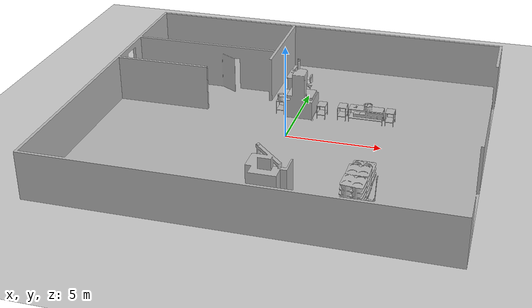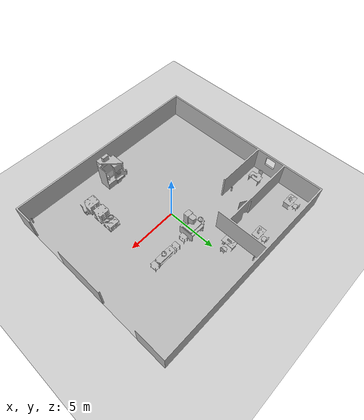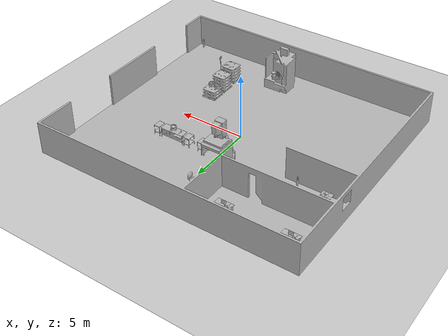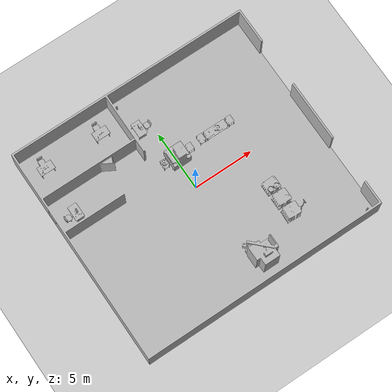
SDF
<sdf version="1.6">
 <world name="default">
  <light name="sun" type="directional">
   <pose>0 0 10 0 -0 0</pose>
   <diffuse>0.8 0.8 0.8 1</diffuse>
   <specular>0.2 0.2 0.2 1</specular>
   <attenuation>
    <range>1000</range>
    <constant>0.9</constant>
    <linear>0.01</linear>
    <quadratic>0.001</quadratic>
   </attenuation>
   <direction>-0.5 0.1 -0.9</direction>
  </light>
  <model name="ground_plane">
   <static>1</static>
   <link name="link">
    <collision name="collision">
     <geometry><plane><normal>0 0 1</normal><size>100 100</size></plane></geometry>
     <surface><friction><ode><mu>100</mu><mu2>50</mu2></ode></friction></surface>
    </collision>
    <visual name="visual">
     <cast_shadows>0</cast_shadows>
     <geometry><plane><normal>0 0 1</normal><size>100 100</size></plane></geometry>
     <material>
      <script><uri>file://media/materials/scripts/gazebo.material</uri><name>Gazebo/Grey</name></script>
     </material>
    </visual>
   </link>
  </model>
  <gravity>0 0 -9.8</gravity>
  <magnetic_field>6e-06 2.3e-05 -4.2e-05</magnetic_field>
  <atmosphere type="adiabatic"/>
  <physics name="default_physics" default="0" type="ode">
   <max_step_size>0.001</max_step_size>
   <real_time_factor>1</real_time_factor>
   <real_time_update_rate>1000</real_time_update_rate>
  </physics>
  <scene><ambient>0.4 0.4 0.4 1</ambient><background>0.7 0.7 0.7 1</background><shadows>1</shadows></scene>
  <spherical_coordinates>
   <surface_model>EARTH_WGS84</surface_model>
   <latitude_deg>0</latitude_deg>
   <longitude_deg>0</longitude_deg>
   <elevation>0</elevation>
   <heading_deg>0</heading_deg>
  </spherical_coordinates>
  <model name="floor_sketch">
   <static>1</static>
   <link name="link">
    <visual name="visual">
     <geometry><mesh><uri>model://floor_sketch/meshes/floor_sketch.obj</uri></mesh></geometry>
    </visual>
    <collision name="collision">
     <geometry><mesh><uri>model://floor_sketch/meshes/floor_sketch.obj</uri></mesh></geometry>
    </collision>
   </link>
  </model>
  <model name="2D Vision Measurement Machine">
   <static>1</static>
   <link name="link">
    <visual name="visual">
     <geometry>
      <mesh><uri>model://2D Vision Measurement Machine/meshes/2D_Vision_Measurement_Machine.obj</uri></mesh>
     </geometry>
    </visual>
    <collision name="collision">
     <geometry>
      <mesh><uri>model://2D Vision Measurement Machine/meshes/2D_Vision_Measurement_Machine.obj</uri></mesh>
     </geometry>
    </collision>
   </link>
   <pose>0.167538 2.64822 0.15 0 0 -1.5708</pose>
  </model>
  <model name="Adjustable Height Work Table">
   <static>1</static>
   <link name="link">
    <visual name="visual">
     <geometry>
      <mesh><uri>model://Adjustable Height Work Table/meshes/Adjustable_Height_Work_Table.obj</uri></mesh>
     </geometry>
    </visual>
    <collision name="collision">
     <geometry>
      <mesh><uri>model://Adjustable Height Work Table/meshes/Adjustable_Height_Work_Table.obj</uri></mesh>
     </geometry>
    </collision>
   </link>
   <pose>1.3 2.7 0.762 0 -0 0</pose>
  </model>
  <model name="adjustable_height_table_w_wheel">
   <static>1</static>
   <link name="link">
    <visual name="visual">
     <geometry>
      <mesh><uri>model://adjustable_height_table_w_wheel/meshes/adjustable_height_table_w_wheel.obj</uri></mesh>
     </geometry>
    </visual>
    <collision name="collision">
     <geometry>
      <mesh><uri>model://adjustable_height_table_w_wheel/meshes/adjustable_height_table_w_wheel.obj</uri></mesh>
     </geometry>
    </collision>
   </link>
   <pose>-1.17885 3.00036 0 0 -0 0</pose>
  </model>
  <model name="polishing_table">
   <static>1</static>
   <link name="link">
    <visual name="visual">
     <geometry><mesh><uri>model://polishing_table/meshes/polishing_table.obj</uri></mesh></geometry>
    </visual>
    <collision name="collision">
     <geometry><mesh><uri>model://polishing_table/meshes/polishing_table.obj</uri></mesh></geometry>
    </collision>
   </link>
   <pose>4.6 3.08945 0 0 -0 1.5708</pose>
  </model>
  <model name="Adjustable Height Work Table_0">
   <static>1</static>
   <link name="link">
    <visual name="visual">
     <geometry>
      <mesh><uri>model://Adjustable Height Work Table/meshes/Adjustable_Height_Work_Table.obj</uri></mesh>
     </geometry>
    </visual>
    <collision name="collision">
     <geometry>
      <mesh><uri>model://Adjustable Height Work Table/meshes/Adjustable_Height_Work_Table.obj</uri></mesh>
     </geometry>
    </collision>
   </link>
   <pose>2.4 2.8 0.762 0 -0 0</pose>
  </model>
  <model name="Adjustable Height Work Table_1">
   <static>1</static>
   <link name="link">
    <visual name="visual">
     <geometry>
      <mesh><uri>model://Adjustable Height Work Table/meshes/Adjustable_Height_Work_Table.obj</uri></mesh>
     </geometry>
    </visual>
    <collision name="collision">
     <geometry>
      <mesh><uri>model://Adjustable Height Work Table/meshes/Adjustable_Height_Work_Table.obj</uri></mesh>
     </geometry>
    </collision>
   </link>
   <pose>4.96345 2.8 0.762 0 -0 0</pose>
  </model>
  <model name="OKUMA V60R">
   <static>1</static>
   <link name="link">
    <visual name="visual">
     <geometry><mesh><uri>model://OKUMA V60R/meshes/OKUMA_V60R.obj</uri></mesh></geometry>
    </visual>
    <collision name="collision">
     <geometry><mesh><uri>model://OKUMA V60R/meshes/OKUMA_V60R.obj</uri></mesh></geometry>
    </collision>
   </link>
   <pose>1.7 -7 1.07315 0 0 -3.14033</pose>
  </model>
  <model name="Hand_truck_pallet_forged_wheels">
   <static>1</static>
   <link name="link">
    <visual name="visual">
     <geometry>
      <mesh><uri>model://Hand_truck_pallet_forged_wheels/meshes/Hand_truck_pallet_forged_wheels.obj</uri></mesh>
     </geometry>
    </visual>
    <collision name="collision">
     <geometry>
      <mesh><uri>model://Hand_truck_pallet_forged_wheels/meshes/Hand_truck_pallet_forged_wheels.obj</uri></mesh>
     </geometry>
    </collision>
   </link>
   <pose>5.5 -5.68613 0.1003 0 -0.03 -3.14033</pose>
  </model>
  <model name="pallet_forged_wheels_newaxis">
   <static>1</static>
   <link name="link">
    <visual name="visual">
     <geometry>
      <mesh><uri>model://pallet_forged_wheels_newaxis/meshes/pallet_forged_wheels_newaxis.obj</uri></mesh>
     </geometry>
    </visual>
    <collision name="collision">
     <geometry>
      <mesh><uri>model://pallet_forged_wheels_newaxis/meshes/pallet_forged_wheels_newaxis.obj</uri></mesh>
     </geometry>
    </collision>
   </link>
   <pose>4.69171 -4.38178 0 0 -0 0</pose>
  </model>
  <model name="pallet_forged_wheels_newaxis_semi">
   <static>1</static>
   <link name="link">
    <visual name="visual">
     <geometry>
      <mesh><uri>model://pallet_forged_wheels_newaxis_semi/meshes/pallet_forged_wheels_newaxis_semi.obj</uri></mesh>
     </geometry>
    </visual>
    <collision name="collision">
     <geometry>
      <mesh><uri>model://pallet_forged_wheels_newaxis_semi/meshes/pallet_forged_wheels_newaxis_semi.obj</uri></mesh>
     </geometry>
    </collision>
   </link>
   <pose>4.66959 -3.11219 0 0 -0 0</pose>
  </model>
  <model name="Industrial Fire Extinguisher">
   <static>1</static>
   <link name="link">
    <visual name="visual">
     <geometry>
      <mesh><uri>model://Industrial Fire Extinguisher/meshes/Industrial_Fire_Extinguisher.obj</uri></mesh>
     </geometry>
    </visual>
    <collision name="collision">
     <geometry>
      <mesh><uri>model://Industrial Fire Extinguisher/meshes/Industrial_Fire_Extinguisher.obj</uri></mesh>
     </geometry>
    </collision>
   </link>
   <pose>-1.45396 8.38106 0.25926 0 -0 0</pose>
  </model>
  <model name="Industrial Fire Extinguisher_0">
   <static>1</static>
   <link name="link">
    <visual name="visual">
     <geometry>
      <mesh><uri>model://Industrial Fire Extinguisher/meshes/Industrial_Fire_Extinguisher.obj</uri></mesh>
     </geometry>
    </visual>
    <collision name="collision">
     <geometry>
      <mesh><uri>model://Industrial Fire Extinguisher/meshes/Industrial_Fire_Extinguisher.obj</uri></mesh>
     </geometry>
    </collision>
   </link>
   <pose>9.51897 -8.59623 0.25926 0 -0 0</pose>
  </model>
  <model name="Industrial Fire Extinguisher_1">
   <static>1</static>
   <link name="link">
    <visual name="visual">
     <geometry>
      <mesh><uri>model://Industrial Fire Extinguisher/meshes/Industrial_Fire_Extinguisher.obj</uri></mesh>
     </geometry>
    </visual>
    <collision name="collision">
     <geometry>
      <mesh><uri>model://Industrial Fire Extinguisher/meshes/Industrial_Fire_Extinguisher.obj</uri></mesh>
     </geometry>
    </collision>
   </link>
   <pose>-5.97878 2.3106 0.25926 0 -0 0</pose>
  </model>
  <model name="Student Desk - Workstation">
   <static>1</static>
   <link name="link">
    <visual name="visual">
     <geometry>
      <mesh><uri>model://Student Desk - Workstation/meshes/Student_Desk_Workstation.obj</uri></mesh>
     </geometry>
    </visual>
    <collision name="collision">
     <geometry>
      <mesh><uri>model://Student Desk - Workstation/meshes/Student_Desk_Workstation.obj</uri></mesh>
     </geometry>
    </collision>
   </link>
   <pose>-1.05648 5.97358 0.75565 0 0 -3.14033</pose>
  </model>
  <model name="Student Desk - Laptop">
   <static>1</static>
   <link name="link">
    <visual name="visual">
     <geometry><mesh><uri>model://Student Desk - Laptop/meshes/Student_Desk_Laptop.obj</uri></mesh></geometry>
    </visual>
    <collision name="collision">
     <geometry><mesh><uri>model://Student Desk - Laptop/meshes/Student_Desk_Laptop.obj</uri></mesh></geometry>
    </collision>
   </link>
   <pose>-3.61218 7.26757 0.75565 0 0 -1.5708</pose>
  </model>
  <model name="Student Desk - Laptop_0">
   <static>1</static>
   <link name="link">
    <visual name="visual">
     <geometry><mesh><uri>model://Student Desk - Laptop/meshes/Student_Desk_Laptop.obj</uri></mesh></geometry>
    </visual>
    <collision name="collision">
     <geometry><mesh><uri>model://Student Desk - Laptop/meshes/Student_Desk_Laptop.obj</uri></mesh></geometry>
    </collision>
   </link>
   <pose>-8.43208 3.24473 0.75565 0 -0 0</pose>
  </model>
  <model name="Student Desk - Laptop_1">
   <static>1</static>
   <link name="link">
    <visual name="visual">
     <geometry><mesh><uri>model://Student Desk - Laptop/meshes/Student_Desk_Laptop.obj</uri></mesh></geometry>
    </visual>
    <collision name="collision">
     <geometry><mesh><uri>model://Student Desk - Laptop/meshes/Student_Desk_Laptop.obj</uri></mesh></geometry>
    </collision>
   </link>
   <pose>-8.45465 7.2991 0.75565 0 0 -1.5708</pose>
  </model>
 </world>
</sdf>
